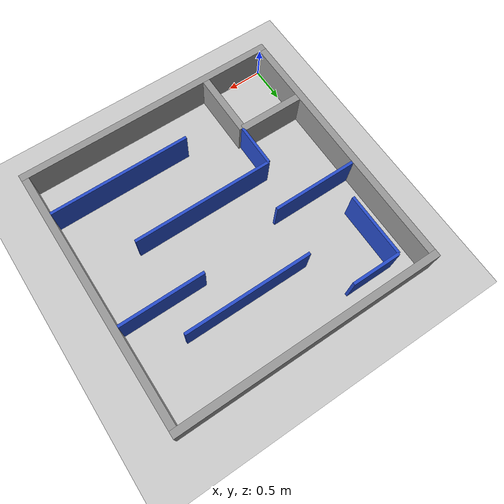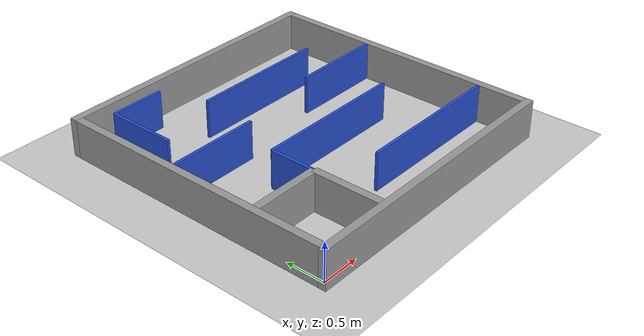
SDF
<?xml version="1.0" ?>
<sdf version="1.6">
  <world name="maze">
    <include>
      <uri>model://sun</uri>
    </include>
    <include>
      <uri>model://ground_plane</uri>
    </include>

    <plugin name="gazebo_ros_state" filename="libgazebo_ros_state.so">
      <ros>
        <namespace>/</namespace>
      </ros>
    </plugin>

    <model name='wall_bottom'>
      <pose frame=''>1.8 -0.05 0.25 0 -0 0</pose>
      <link name='link'>

        <collision name='collision'>
          <geometry>
            <box>
              <size>3.8 0.1 0.5</size>
            </box>
          </geometry>
        </collision>
        <visual name='visual'>
          <geometry>
            <box>
              <size>3.8 0.1 0.5</size>
            </box>
          </geometry>
          <material>
            <script>
              <uri>file://media/materials/scripts/gazebo.material</uri>
              <name>Gazebo/Grey</name>
            </script>
          </material>
        </visual>
      </link>
      <static>1</static>
    </model>
    <model name='wall_top'>
      <pose frame=''>1.8 3.65 0.25 0 -0 0</pose>
      <link name='link'>

        <collision name='collision'>
          <geometry>
            <box>
              <size>3.8 0.1 0.5</size>
            </box>
          </geometry>
        </collision>
        <visual name='visual'>
          <geometry>
            <box>
              <size>3.8 0.1 0.5</size>
            </box>
          </geometry>
          <material>
            <script>
              <uri>file://media/materials/scripts/gazebo.material</uri>
              <name>Gazebo/Grey</name>
            </script>
          </material>
        </visual>
      </link>
      <static>1</static>
    </model>
    <model name='wall_left'>
      <pose frame=''>-0.05 1.8 0.25 0 -0 0</pose>
      <link name='link'>

        <collision name='collision'>
          <geometry>
            <box>
              <size>0.1 3.6 0.5</size>
            </box>
          </geometry>
        </collision>
        <visual name='visual'>
          <geometry>
            <box>
              <size>0.1 3.6 0.5</size>
            </box>
          </geometry>
          <material>
            <script>
              <uri>file://media/materials/scripts/gazebo.material</uri>
              <name>Gazebo/Grey</name>
            </script>
          </material>
        </visual>
      </link>
      <static>1</static>
    </model>
    <model name='wall_right'>
      <pose frame=''>3.65 1.8 0.25 0 -0 0</pose>
      <link name='link'>

        <collision name='collision'>
          <geometry>
            <box>
              <size>0.1 3.6 0.5</size>
            </box>
          </geometry>
        </collision>
        <visual name='visual'>
          <geometry>
            <box>
              <size>0.1 3.6 0.5</size>
            </box>
          </geometry>
          <material>
            <script>
              <uri>file://media/materials/scripts/gazebo.material</uri>
              <name>Gazebo/Grey</name>
            </script>
          </material>
        </visual>
      </link>
      <static>1</static>
    </model>
    <model name='wall_GF'>
      <pose frame=''>0.9 0.45 0.25 0 -0 0</pose>
      <link name='link'>

        <collision name='collision'>
          <geometry>
            <box>
              <size>0.1 0.9 0.5</size>
            </box>
          </geometry>
        </collision>
        <visual name='visual'>
          <geometry>
            <box>
              <size>0.1 0.9 0.5</size>
            </box>
          </geometry>
          <material>
            <script>
              <uri>file://media/materials/scripts/gazebo.material</uri>
              <name>Gazebo/Grey</name>
            </script>
          </material>
        </visual>
      </link>
      <static>1</static>
    </model>
    <model name='wall_FE'>
      <pose frame=''>0.45 0.9 0.25 0 -0 0</pose>
      <link name='link'>

        <collision name='collision'>
          <geometry>
            <box>
              <size>0.9 0.1 0.5</size>
            </box>
          </geometry>
        </collision>
        <visual name='visual'>
          <geometry>
            <box>
              <size>0.9 0.1 0.5</size>
            </box>
          </geometry>
          <material>
            <script>
              <uri>file://media/materials/scripts/gazebo.material</uri>
              <name>Gazebo/Grey</name>
            </script>
          </material>
        </visual>
      </link>
      <static>1</static>
    </model>
    <model name='soft_LM'>
      <pose frame=''>2.6 0.6 0.25 0 -0 0</pose>
      <link name='link'>
        <collision name='collision'>
          <geometry>
            <box>
              <size>2.0 0.04 0.5</size>
            </box>
          </geometry>
        </collision>
        <visual name='visual'>
          <geometry>
            <box>
              <size>2.0 0.04 0.5</size>
            </box>
          </geometry>
          <material>
            <script>
              <uri>file://media/materials/scripts/gazebo.material</uri>
              <name>Gazebo/Blue</name>
            </script>
          </material>
        </visual>
      </link>
      <static>1</static>
    </model>

    <model name='soft_M1F'>
      <pose frame=''>0.9 1.2 0.25 0 -0 0</pose>
      <link name='link'>
        <collision name='collision'>
          <geometry>
            <box>
              <size>0.04 0.6 0.5</size>
            </box>
          </geometry>
        </collision>
        <visual name='visual'>
          <geometry>
            <box>
              <size>0.04 0.6 0.5</size>
            </box>
          </geometry>
          <material>
            <script>
              <uri>file://media/materials/scripts/gazebo.material</uri>
              <name>Gazebo/Blue</name>
            </script>
          </material>
        </visual>
      </link>
      <static>1</static>
    </model>

    <model name='soft_M1L1'>
      <pose frame=''>1.9 1.5 0.25 0 -0 0</pose>
      <link name='link'>
        <collision name='collision'>
          <geometry>
            <box>
              <size>2.0 0.04 0.5</size>
            </box>
          </geometry>
        </collision>
        <visual name='visual'>
          <geometry>
            <box>
              <size>2.0 0.04 0.5</size>
            </box>
          </geometry>
          <material>
            <script>
              <uri>file://media/materials/scripts/gazebo.material</uri>
              <name>Gazebo/Blue</name>
            </script>
          </material>
        </visual>
      </link>
      <static>1</static>
    </model>

    <model name='soft_KN'>
      <pose frame=''>0.6 2.1 0.25 0 -0 0</pose>
      <link name='link'>
        <collision name='collision'>
          <geometry>
            <box>
              <size>1.2 0.04 0.5</size>
            </box>
          </geometry>
        </collision>
        <visual name='visual'>
          <geometry>
            <box>
              <size>1.2 0.04 0.5</size>
            </box>
          </geometry>
          <material>
            <script>
              <uri>file://media/materials/scripts/gazebo.material</uri>
              <name>Gazebo/Blue</name>
            </script>
          </material>
        </visual>
      </link>
      <static>1</static>
    </model>

    <model name='soft_N1K1'>
      <pose frame=''>3.0 2.3 0.25 0 -0 0</pose>
      <link name='link'>
        <collision name='collision'>
          <geometry>
            <box>
              <size>1.2 0.04 0.5</size>
            </box>
          </geometry>
        </collision>
        <visual name='visual'>
          <geometry>
            <box>
              <size>1.2 0.04 0.5</size>
            </box>
          </geometry>
          <material>
            <script>
              <uri>file://media/materials/scripts/gazebo.material</uri>
              <name>Gazebo/Blue</name>
            </script>
          </material>
        </visual>
      </link>
      <static>1</static>
    </model>

    <model name='soft_IH'>
      <pose frame=''>2.1 2.8 0.25 0 -0 0</pose>
      <link name='link'>
        <collision name='collision'>
          <geometry>
            <box>
              <size>1.8 0.04 0.5</size>
            </box>
          </geometry>
        </collision>
        <visual name='visual'>
          <geometry>
            <box>
              <size>1.8 0.04 0.5</size>
            </box>
          </geometry>
          <material>
            <script>
              <uri>file://media/materials/scripts/gazebo.material</uri>
              <name>Gazebo/Blue</name>
            </script>
          </material>
        </visual>
      </link>
      <static>1</static>
    </model>

    <model name='soft_TS'>
      <pose frame=''>0.3 2.95 0.25 0 -0 0</pose>
      <link name='link'>
        <collision name='collision'>
          <geometry>
            <box>
              <size>0.04 0.9 0.5</size>
            </box>
          </geometry>
        </collision>
        <visual name='visual'>
          <geometry>
            <box>
              <size>0.04 0.9 0.5</size>
            </box>
          </geometry>
          <material>
            <script>
              <uri>file://media/materials/scripts/gazebo.material</uri>
              <name>Gazebo/Blue</name>
            </script>
          </material>
        </visual>
      </link>
      <static>1</static>
    </model>

    <model name='soft_SR'>
      <pose frame=''>0.65 3.4 0.25 0 -0 0</pose>
      <link name='link'>
        <collision name='collision'>
          <geometry>
            <box>
              <size>0.7 0.04 0.5</size>
            </box>
          </geometry>
        </collision>
        <visual name='visual'>
          <geometry>
            <box>
              <size>0.7 0.04 0.5</size>
            </box>
          </geometry>
          <material>
            <script>
              <uri>file://media/materials/scripts/gazebo.material</uri>
              <name>Gazebo/Blue</name>
            </script>
          </material>
        </visual>
      </link>
      <static>1</static>
    </model>

    <gui fullscreen='0'>
      <camera name='user_camera'>
        <pose frame=''>1.8 1.8 5.0 0 1.570796 1.570796</pose>
        <view_controller>orbit</view_controller>
        <projection_type>perspective</projection_type>
      </camera>
    </gui>
  </world>
</sdf>
